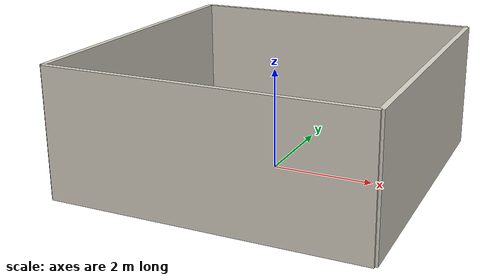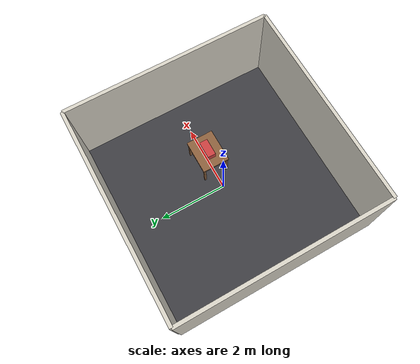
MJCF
<mujoco model="daksha_home_env">
  <compiler angle="radian" meshdir="../assets"/>

  <option integrator="implicitfast" gravity="0 0 -9.81"/>

  <visual>
    <headlight diffuse="0.6 0.6 0.6" ambient="0.3 0.3 0.3" specular="0 0 0"/>
    <rgba haze="0.15 0.25 0.35 1"/>
    <global azimuth="120" elevation="-20" offwidth="1280" offheight="720"/>
    <quality shadowsize="4096"/>
  </visual>

  <default>
    <default class="wall">
      <geom type="box" rgba="0.85 0.83 0.78 1" group="0"/>
    </default>
    <default class="furniture">
      <geom type="box" rgba="0.55 0.38 0.24 1" friction="0.9 0.02 0.001"/>
    </default>
    <default class="target">
      <geom type="box" rgba="0.80 0.25 0.25 1" friction="1.0 0.05 0.002"/>
    </default>
  </default>

  <asset>
    <texture type="skybox" builtin="gradient" rgb1="0.35 0.45 0.6" rgb2="0.1 0.12 0.16"
             width="512" height="3072"/>
    <texture type="2d" name="groundtex" builtin="checker" mark="edge"
             rgb1="0.2 0.2 0.22" rgb2="0.28 0.28 0.30" markrgb="0.8 0.8 0.8"
             width="300" height="300"/>
    <material name="groundmat" texture="groundtex" texuniform="true"
              texrepeat="6 6" reflectance="0.1"/>
    <material name="wallmat" rgba="0.85 0.83 0.78 1"/>
  </asset>

  <worldbody>
    <light name="ceiling" pos="0 0 2.8" dir="0 0 -1" directional="false"
           diffuse="0.5 0.5 0.5" specular="0.1 0.1 0.1"/>

    <!-- floor -->
    <geom name="floor" type="plane" size="3 3 0.05" material="groundmat"/>

    <!-- room walls (3m x 3m room, 2.5m tall, 0.05 thick) -->
    <geom name="wall_n" class="wall" pos="0 3 1.25" size="3 0.05 1.25"/>
    <geom name="wall_s" class="wall" pos="0 -3 1.25" size="3 0.05 1.25"/>
    <geom name="wall_e" class="wall" pos="3 0 1.25" size="0.05 3 1.25"/>
    <geom name="wall_w" class="wall" pos="-3 0 1.25" size="0.05 3 1.25"/>

    <!-- work table: top at 0.75m, legs -->
    <body name="table" pos="0.9 0 0">
      <geom name="table_top" class="furniture" pos="0 0 0.75" size="0.5 0.4 0.03"/>
      <geom name="leg_1" class="furniture" pos="0.45 0.35 0.36" size="0.03 0.03 0.36"/>
      <geom name="leg_2" class="furniture" pos="-0.45 0.35 0.36" size="0.03 0.03 0.36"/>
      <geom name="leg_3" class="furniture" pos="0.45 -0.35 0.36" size="0.03 0.03 0.36"/>
      <geom name="leg_4" class="furniture" pos="-0.45 -0.35 0.36" size="0.03 0.03 0.36"/>
    </body>

    <!-- target object: wide + heavy enough to require BOTH hands.
         0.5 x 0.25 x 0.2 box, ~4 kg. Sits on the table. -->
    <body name="target_box" pos="0.9 0 0.88">
      <freejoint name="target_free"/>
      <geom name="target_geom" class="target" size="0.25 0.12 0.10" mass="4.0"/>
    </body>
  </worldbody>
</mujoco>
